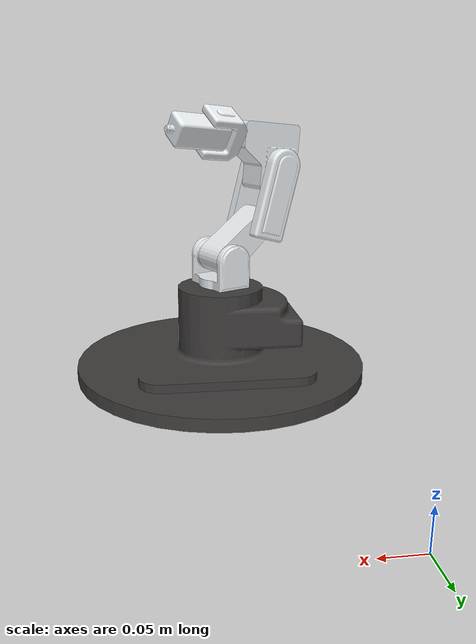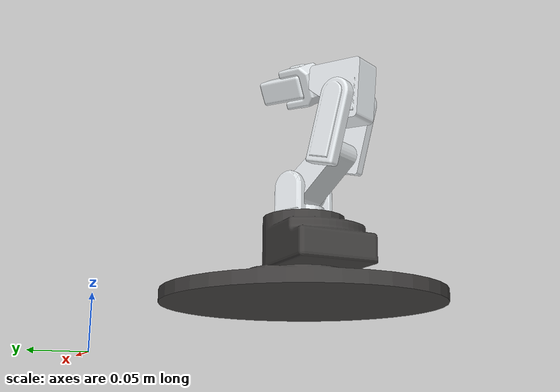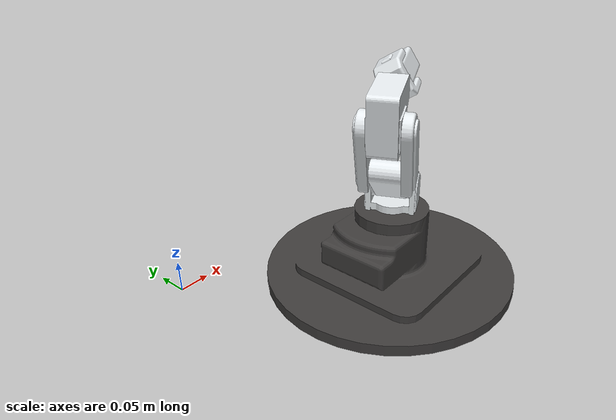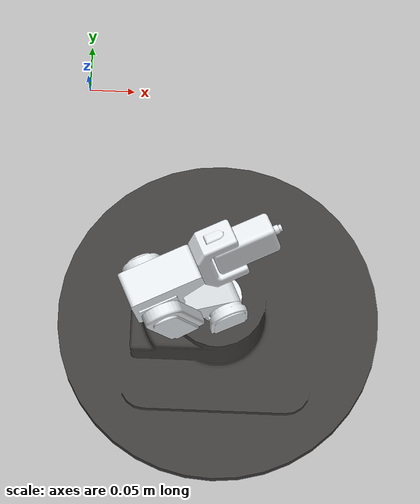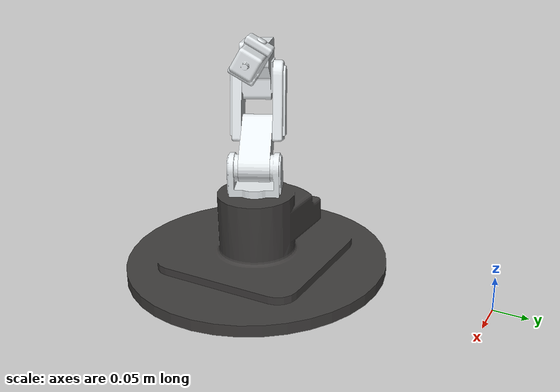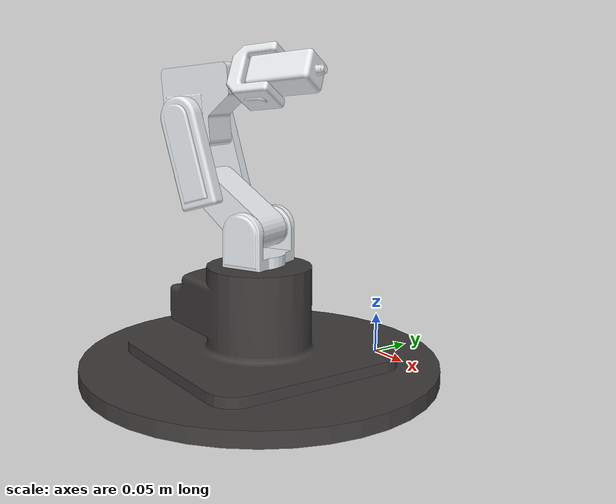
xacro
<?xml version="1.0"?>
<robot xmlns:xacro="http://www.ros.org/wiki/xacro" name="six_dof_arm">
    <xacro:arg name="initial_positions_file" default="initial_positions.yaml" />

    <!-- Import six_dof_arm urdf file -->
    <xacro:include filename="$(find six_dof_arm)/urdf/six_dof_arm.urdf" />

    <!-- Import control_xacro -->
    <xacro:include filename="six_dof_arm.ros2_control.xacro" />

    <xacro:six_dof_arm_ros2_control name="FakeSystem" initial_positions_file="$(arg initial_positions_file)"/>

</robot>

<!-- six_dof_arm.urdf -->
<robot
  name="six_dof_arm">
  <link
    name="base_link">
    <inertial>
      <origin
        xyz="0.150569577094829 -0.282065557059584 0.0858444903709998"
        rpy="0 0 0" />
      <mass
        value="3.82869416281393" />
      <inertia
        ixx="0.0231805999397633"
        ixy="-9.35626509492742E-07"
        ixz="0.000718143477106582"
        iyy="0.023829421434195"
        iyz="6.20025735268592E-07"
        izz="0.0401642921599346" />
    </inertial>
    <visual>
      <origin
        xyz="0 0 0"
        rpy="0 0 0" />
      <geometry>
        <mesh
          filename="package://six_dof_arm/meshes/base_link.STL" />
      </geometry>
      <material
        name="">
        <color
          rgba="0.247058823529412 0.23921568627451 0.235294117647059 1" />
      </material>
    </visual>
    <collision>
      <origin
        xyz="0 0 0"
        rpy="0 0 0" />
      <geometry>
        <mesh
          filename="package://six_dof_arm/meshes/base_link.STL" />
      </geometry>
    </collision>
  </link>
  <link
    name="link_1">
    <inertial>
      <origin
        xyz="4.32383283317378E-05 0.0680624071651353 6.52562397435164E-06"
        rpy="0 0 0" />
      <mass
        value="0.496365683666781" />
      <inertia
        ixx="0.000792847522971884"
        ixy="-3.73013993388821E-07"
        ixz="1.80968680807939E-05"
        iyy="0.000184926812457533"
        iyz="-4.97697758356282E-09"
        izz="0.000717881898216823" />
    </inertial>
    <visual>
      <origin
        xyz="0 0 0"
        rpy="0 0 0" />
      <geometry>
        <mesh
          filename="package://six_dof_arm/meshes/link_1.STL" />
      </geometry>
      <material
        name="">
        <color
          rgba="0.898039215686275 0.917647058823529 0.929411764705882 1" />
      </material>
    </visual>
    <collision>
      <origin
        xyz="0 0 0"
        rpy="0 0 0" />
      <geometry>
        <mesh
          filename="package://six_dof_arm/meshes/link_1.STL" />
      </geometry>
    </collision>
  </link>
  <joint
    name="joint_1"
    type="continuous">
    <origin
      xyz="0.15423 -0.28206 0.10149"
      rpy="1.5708 0 0.43749" />
    <parent
      link="base_link" />
    <child
      link="link_1" />
    <axis
      xyz="0 1 0" />
  </joint>
  <link
    name="link_2">
    <inertial>
      <origin
        xyz="0.0338354479920845 -0.0064322169652048 -0.00245407284264082"
        rpy="0 0 0" />
      <mass
        value="0.252006469213197" />
      <inertia
        ixx="6.24106980967512E-05"
        ixy="2.122889857404E-05"
        ixz="8.94621229356148E-06"
        iyy="0.000169543347753182"
        iyz="-3.84314642165744E-07"
        izz="0.000182079065869168" />
    </inertial>
    <visual>
      <origin
        xyz="0 0 0"
        rpy="0 0 0" />
      <geometry>
        <mesh
          filename="package://six_dof_arm/meshes/link_2.STL" />
      </geometry>
      <material
        name="">
        <color
          rgba="0.898039215686275 0.917647058823529 0.929411764705882 1" />
      </material>
    </visual>
    <collision>
      <origin
        xyz="0 0 0"
        rpy="0 0 0" />
      <geometry>
        <mesh
          filename="package://six_dof_arm/meshes/link_2.STL" />
      </geometry>
    </collision>
  </link>
  <joint
    name="joint_2"
    type="revolute">
    <origin
      xyz="0 0.112 0"
      rpy="1.5708 0 2.4755" />
    <parent
      link="link_1" />
    <child
      link="link_2" />
    <axis
      xyz="0 1 0" />
    <limit
      lower="-1.57"
      upper="1.57"
      effort="10"
      velocity="1.57" />
  </joint>
  <link
    name="link_3">
    <inertial>
      <origin
        xyz="-0.0270205188287359 -0.00383049369840976 -0.0142531927255568"
        rpy="0 0 0" />
      <mass
        value="0.343635149193939" />
      <inertia
        ixx="0.00028538664881932"
        ixy="-9.66773270784163E-06"
        ixz="-4.92482264612374E-06"
        iyy="0.000529175475076648"
        iyz="4.3261957062028E-05"
        izz="0.000338633695459992" />
    </inertial>
    <visual>
      <origin
        xyz="0 0 0"
        rpy="0 0 0" />
      <geometry>
        <mesh
          filename="package://six_dof_arm/meshes/link_3.STL" />
      </geometry>
      <material
        name="">
        <color
          rgba="0.898039215686275 0.917647058823529 0.929411764705882 1" />
      </material>
    </visual>
    <collision>
      <origin
        xyz="0 0 0"
        rpy="0 0 0" />
      <geometry>
        <mesh
          filename="package://six_dof_arm/meshes/link_3.STL" />
      </geometry>
    </collision>
  </link>
  <joint
    name="joint_3"
    type="revolute">
    <origin
      xyz="0.065 0 0"
      rpy="1.5708 0.62232 3.1416" />
    <parent
      link="link_2" />
    <child
      link="link_3" />
    <axis
      xyz="0 0 1" />
    <limit
      lower="-1.57"
      upper="1.57"
      effort="10"
      velocity="1.57" />
  </joint>
  <link
    name="link_4">
    <inertial>
      <origin
        xyz="0.00315043687013407 0.00823334083490718 -0.0153088125607234"
        rpy="0 0 0" />
      <mass
        value="0.458108386971292" />
      <inertia
        ixx="0.000266524923789775"
        ixy="-4.83010597650581E-05"
        ixz="-2.58452901540373E-05"
        iyy="0.000231242852741601"
        iyz="-7.692645775569E-06"
        izz="0.000378867067607329" />
    </inertial>
    <visual>
      <origin
        xyz="0 0 0"
        rpy="0 0 0" />
      <geometry>
        <mesh
          filename="package://six_dof_arm/meshes/link_4.STL" />
      </geometry>
      <material
        name="">
        <color
          rgba="0.898039215686275 0.917647058823529 0.929411764705882 1" />
      </material>
    </visual>
    <collision>
      <origin
        xyz="0 0 0"
        rpy="0 0 0" />
      <geometry>
        <mesh
          filename="package://six_dof_arm/meshes/link_4.STL" />
      </geometry>
    </collision>
  </link>
  <joint
    name="joint_4"
    type="revolute">
    <origin
      xyz="-0.0652500000000006 0 0"
      rpy="0 0 1.38288301124323" />
    <parent
      link="link_3" />
    <child
      link="link_4" />
    <axis
      xyz="0 0 1" />
    <limit
      lower="-1.57"
      upper="1.57"
      effort="10"
      velocity="1.57" />
  </joint>
  <link
    name="link_5">
    <inertial>
      <origin
        xyz="0.00289484913778473 0.00414654326045577 0.0215505654647544"
        rpy="0 0 0" />
      <mass
        value="0.126917113445138" />
      <inertia
        ixx="5.56063236989531E-05"
        ixy="-1.6838052978347E-06"
        ixz="-1.46179701383522E-06"
        iyy="3.36435019532127E-05"
        iyz="-2.18123980266177E-06"
        izz="4.54057563337419E-05" />
    </inertial>
    <visual>
      <origin
        xyz="0 0 0"
        rpy="0 0 0" />
      <geometry>
        <mesh
          filename="package://six_dof_arm/meshes/link_5.STL" />
      </geometry>
      <material
        name="">
        <color
          rgba="0.898039215686275 0.917647058823529 0.929411764705882 1" />
      </material>
    </visual>
    <collision>
      <origin
        xyz="0 0 0"
        rpy="0 0 0" />
      <geometry>
        <mesh
          filename="package://six_dof_arm/meshes/link_5.STL" />
      </geometry>
    </collision>
  </link>
  <joint
    name="joint_5"
    type="continuous">
    <origin
      xyz="0.041309 0.030815 0"
      rpy="-1.5708 -0.5334 -1.5708" />
    <parent
      link="link_4" />
    <child
      link="link_5" />
    <axis
      xyz="0 0 1" />
  </joint>
  <link
    name="link_6">
    <inertial>
      <origin
        xyz="0.0131878992229404 -0.00226095943259702 -0.012293076726409"
        rpy="0 0 0" />
      <mass
        value="0.148374429790066" />
      <inertia
        ixx="2.93261916769444E-05"
        ixy="7.3351025715348E-06"
        ixz="1.40390696102425E-05"
        iyy="6.10021376701108E-05"
        iyz="-3.137672487269E-06"
        izz="5.61863010649392E-05" />
    </inertial>
    <visual>
      <origin
        xyz="0 0 0"
        rpy="0 0 0" />
      <geometry>
        <mesh
          filename="package://six_dof_arm/meshes/link_6.STL" />
      </geometry>
      <material
        name="">
        <color
          rgba="0.898039215686275 0.917647058823529 0.929411764705882 1" />
      </material>
    </visual>
    <collision>
      <origin
        xyz="0 0 0"
        rpy="0 0 0" />
      <geometry>
        <mesh
          filename="package://six_dof_arm/meshes/link_6.STL" />
      </geometry>
    </collision>
  </link>
  <joint
    name="joint_6"
    type="revolute">
    <origin
      xyz="0 0 0.038456"
      rpy="1.5708 -1.5672 -1.5708" />
    <parent
      link="link_5" />
    <child
      link="link_6" />
    <axis
      xyz="0 0 1" />
    <limit
      lower="-1.57"
      upper="1.57"
      effort="10"
      velocity="1.57" />
  </joint>
      <ros2_control name="GazeboSimSystem" type="system">
  	<hardware>
  		<plugin>gazebo_ros2_control/GazeboSystem</plugin>
  	</hardware>
  	<joint name="joint_1">
  		<command_interface name="position"/>
  		<state_interface name="position">
  			<param name="initial_value">0.0</param>
  		</state_interface>
  		<state_interface name="velocity"/>
  	</joint>
  	<joint name="joint_2">
  		<command_interface name="position"/>
  		<state_interface name="position">
  			<param name="initial_value">0.0</param>
  		</state_interface>
  		<state_interface name="velocity"/>
  	</joint>
  	<joint name="joint_3">
  		<command_interface name="position"/>
  		<state_interface name="position">
  			<param name="initial_value">0.0</param>
  		</state_interface>
  		<state_interface name="velocity"/>
  	</joint>
  	<joint name="joint_4">
  		<command_interface name="position"/>
  		<state_interface name="position">
  			<param name="initial_value">0.0</param>
  		</state_interface>
  		<state_interface name="velocity"/>
  	</joint>
  	<joint name="joint_5">
  		<command_interface name="position"/>
  		<state_interface name="position">
  			<param name="initial_value">0.0</param>
  		</state_interface>
  		<state_interface name="velocity"/>
  	</joint>
  	<joint name="joint_6">
  		<command_interface name="position"/>
  		<state_interface name="position">
  			<param name="initial_value">0.0</param>
  		</state_interface>
  		<state_interface name="velocity"/>
  	</joint>
  </ros2_control>
  <gazebo>
  	<plugin name="gazebo_ros2_control" filename="libgazebo_ros2_control.so">
  		<parameters>$(find six_dof_arm)/config/joint_names_six_dof_arm.yaml</parameters>
  	</plugin>
  </gazebo>
</robot>
